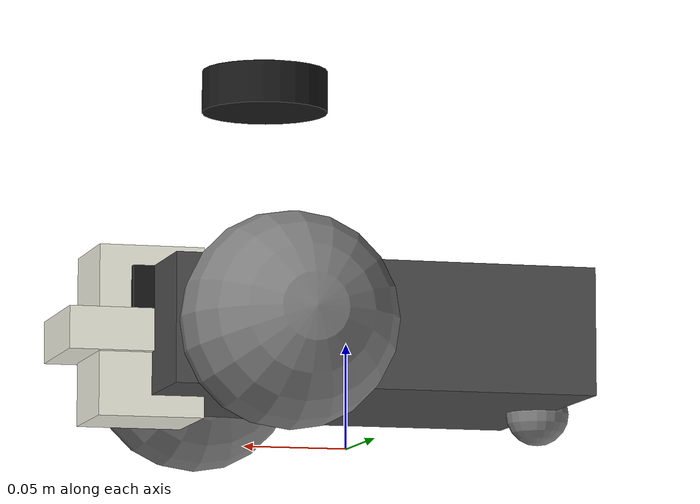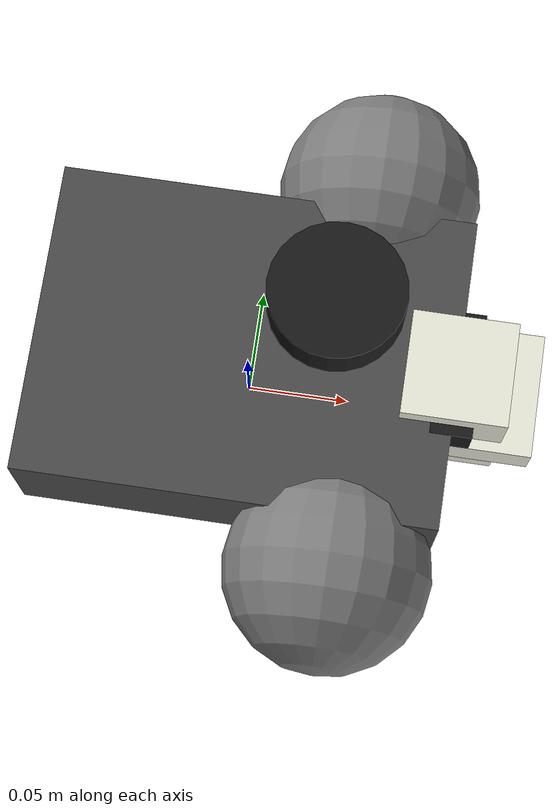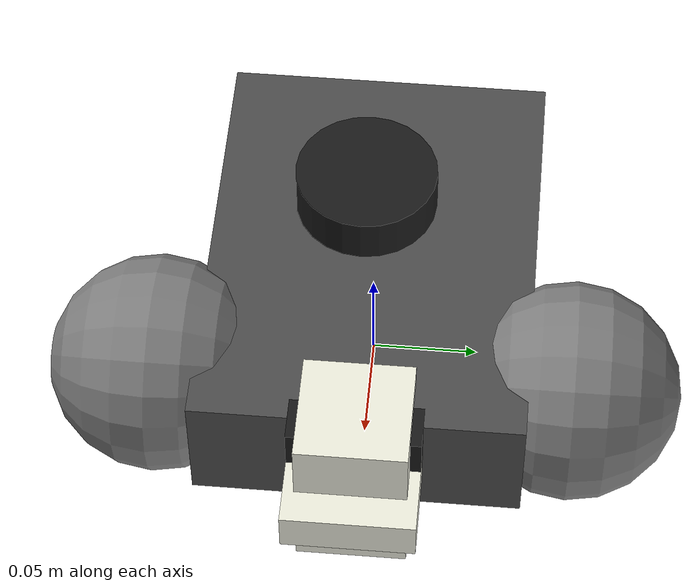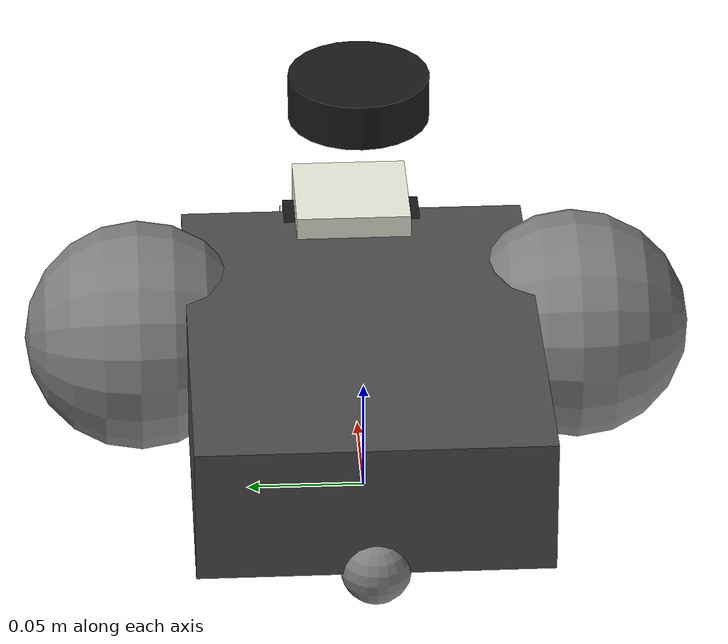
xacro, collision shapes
<?xml version="1.0"?>
<robot name="puzzlebot" xmlns:xacro="http://ros.org/wiki/xacro">

  <!-- Arguments -->
  <xacro:arg name="is_ignition" default="true"/>
  <xacro:arg name="is_sim" default="true"/>

  <!-- LiDAR is mounted rear-facing on the real robot (cable toward back).
       Rotate 180° in real mode so the scan aligns with +X forward. -->
  <xacro:property name="lidar_yaw" value="${0.0 if '$(arg is_sim)' == 'true' else 3.141592653589793}"/>

  <!-- Include Gazebo plugins -->
  <xacro:include filename="$(find description)/urdf/puzzlebot_gazebo.xacro" />

  <!-- Include ros2_control -->
  <xacro:include filename="$(find description)/urdf/puzzlebot_ros2_control.xacro" />

  <!-- ==================== PROPERTIES ==================== -->
  <xacro:property name="wheel_radius"    value="0.05"/>
  <xacro:property name="wheel_separation" value="0.19"/>
  <xacro:property name="base_mass"  value="1.0"/>
  <xacro:property name="wheel_mass" value="0.1"/>
  <xacro:property name="caster_mass" value="0.01"/>

  <!-- mm → m for STL meshes -->
  <xacro:property name="s" value="0.001"/>

  <!-- Inertia macros -->
  <xacro:macro name="cylinder_inertia" params="m r h">
    <inertial>
      <mass value="${m}"/>
      <inertia ixx="${m*(3*r*r+h*h)/12}" ixy="0.0" ixz="0.0"
               iyy="${m*(3*r*r+h*h)/12}" iyz="0.0"
               izz="${m*r*r/2}"/>
    </inertial>
  </xacro:macro>

  <xacro:macro name="box_inertia" params="m x y z">
    <inertial>
      <mass value="${m}"/>
      <inertia ixx="${m*(y*y+z*z)/12}" ixy="0.0" ixz="0.0"
               iyy="${m*(x*x+z*z)/12}" iyz="0.0"
               izz="${m*(x*x+y*y)/12}"/>
    </inertial>
  </xacro:macro>

  <xacro:macro name="sphere_inertia" params="m r">
    <inertial>
      <mass value="${m}"/>
      <inertia ixx="${2*m*r*r/5}" ixy="0.0" ixz="0.0"
               iyy="${2*m*r*r/5}" iyz="0.0"
               izz="${2*m*r*r/5}"/>
    </inertial>
  </xacro:macro>

  <!-- ==================== ROBOT LINKS ==================== -->

  <link name="base_footprint"/>

  <link name="base_link">
    <xacro:box_inertia m="${base_mass}" x="0.2" y="0.15" z="0.06"/>
    <visual>
      <geometry>
        <mesh filename="package://description/meshes/Puzzlebot_Jetson_Lidar_Edition_Base.stl"/>
      </geometry>
      <material name="dark_grey">
        <color rgba="0.3 0.3 0.3 1.0"/>
      </material>
    </visual>
    <collision>
      <geometry>
        <box size="0.2 0.15 0.06"/>
      </geometry>
    </collision>
  </link>

  <link name="wheel_right_link">
    <xacro:cylinder_inertia m="${wheel_mass}" r="${wheel_radius}" h="0.02"/>
    <visual>
      <origin xyz="0 0 0" rpy="-1.5708 0 0"/>
      <geometry>
        <mesh filename="package://description/meshes/Puzzlebot_Wheel.stl"/>
      </geometry>
      <material name="grey">
        <color rgba="0.5 0.5 0.5 1.0"/>
      </material>
    </visual>
    <collision>
      <origin xyz="0 0 0" rpy="1.5708 0 0"/>
      <geometry>
        <sphere radius="${wheel_radius}"/>
      </geometry>
    </collision>
  </link>

  <link name="wheel_left_link">
    <xacro:cylinder_inertia m="${wheel_mass}" r="${wheel_radius}" h="0.02"/>
    <visual>
      <origin xyz="0 0 0" rpy="1.5708 0 0"/>
      <geometry>
        <mesh filename="package://description/meshes/Puzzlebot_Wheel.stl"/>
      </geometry>
      <material name="grey">
        <color rgba="0.5 0.5 0.5 1.0"/>
      </material>
    </visual>
    <collision>
      <origin xyz="0 0 0" rpy="1.5708 0 0"/>
      <geometry>
        <sphere radius="${wheel_radius}"/>
      </geometry>
    </collision>
  </link>

  <link name="caster_link">
    <xacro:sphere_inertia m="${caster_mass}" r="0.015"/>
    <visual>
      <origin xyz="0 0 -0.015" rpy="0 0 0"/>
      <geometry>
        <mesh filename="package://description/meshes/Puzzlebot_Caster_Wheel.stl"/>
      </geometry>
      <material name="grey">
        <color rgba="0.5 0.5 0.5 1.0"/>
      </material>
    </visual>
    <collision>
      <geometry>
        <sphere radius="0.015"/>
      </geometry>
    </collision>
  </link>

  <link name="lidar_link">
    <inertial>
      <mass value="0.05"/>
      <inertia ixx="1e-6" ixy="0" ixz="0" iyy="1e-6" iyz="0" izz="1e-6"/>
    </inertial>
    <visual>
      <geometry>
        <cylinder radius="0.03" length="0.02"/>
      </geometry>
      <material name="black">
        <color rgba="0.1 0.1 0.1 1.0"/>
      </material>
    </visual>
    <collision>
      <geometry>
        <cylinder radius="0.03" length="0.02"/>
      </geometry>
    </collision>
  </link>

  <!-- Front-facing camera fixed to the robot base -->
  <link name="camera_link">
    <inertial>
      <mass value="0.02"/>
      <inertia ixx="1e-6" ixy="0" ixz="0" iyy="1e-6" iyz="0" izz="1e-6"/>
    </inertial>
    <visual>
      <geometry>
        <box size="0.02 0.06 0.02"/>
      </geometry>
      <material name="black">
        <color rgba="0.1 0.1 0.1 1.0"/>
      </material>
    </visual>
    <collision>
      <geometry>
        <box size="0.02 0.06 0.02"/>
      </geometry>
    </collision>
  </link>

  <link name="imu_link">
    <inertial>
      <mass value="0.01"/>
      <inertia ixx="1e-7" ixy="0" ixz="0" iyy="1e-7" iyz="0" izz="1e-7"/>
    </inertial>
  </link>

  <!-- ==================== MINI LIFTER LINKS ==================== -->

  <!-- Mast base: fixed to the front of the robot -->
  <link name="lifter_base_link">
    <visual>
      <origin xyz="0 0 0" rpy="0 0 0"/>
      <geometry>
        <mesh filename="package://description/meshes/mini_lifter/lifter_base_link.STL"
              scale="${s} ${s} ${s}"/>
      </geometry>
      <material name="off_white">
        <color rgba="0.93 0.93 0.87 1.0"/>
      </material>
    </visual>
    <collision>
      <origin xyz="0 0 0" rpy="0 0 0"/>
      <geometry>
        <box size="0.05 0.05 0.08"/>
      </geometry>
    </collision>
    <inertial>
      <origin xyz="0 0 0" rpy="0 0 0"/>
      <mass value="0.05"/>
      <inertia ixx="0.00005" ixy="0" ixz="0"
               iyy="0.00005" iyz="0" izz="0.00002"/>
    </inertial>
  </link>

  <!-- Lower arm: first prismatic stage that rises from the base -->
  <link name="lower_arm_link">
    <visual>
      <origin xyz="0 0 0" rpy="0 0 0"/>
      <geometry>
        <mesh filename="package://description/meshes/mini_lifter/lower_arm_Link.STL"
              scale="${s} ${s} ${s}"/>
      </geometry>
      <material name="light_grey">
        <color rgba="0.80 0.80 0.75 1.0"/>
      </material>
    </visual>
    <collision>
      <origin xyz="0 0 0" rpy="0 0 0"/>
      <geometry>
        <box size="0.04 0.04 0.06"/>
      </geometry>
    </collision>
    <inertial>
      <origin xyz="0 0 0" rpy="0 0 0"/>
      <mass value="0.03"/>
      <inertia ixx="0.00002" ixy="0" ixz="0"
               iyy="0.00002" iyz="0" izz="0.00001"/>
    </inertial>
  </link>

  <!-- Upper arm: second prismatic stage that rises from the lower arm -->
  <link name="upper_arm_link">
    <visual>
      <origin xyz="0 0 0" rpy="0 0 0"/>
      <geometry>
        <mesh filename="package://description/meshes/mini_lifter/upper_arm_Link.STL"
              scale="${s} ${s} ${s}"/>
      </geometry>
      <material name="light_grey">
        <color rgba="0.80 0.80 0.75 1.0"/>
      </material>
    </visual>
    <collision>
      <origin xyz="0 0 0" rpy="0 0 0"/>
      <geometry>
        <box size="0.04 0.04 0.05"/>
      </geometry>
    </collision>
    <inertial>
      <origin xyz="0 0 0" rpy="0 0 0"/>
      <mass value="0.02"/>
      <inertia ixx="0.00001" ixy="0" ixz="0"
               iyy="0.00001" iyz="0" izz="0.000008"/>
    </inertial>
  </link>

  <!-- Carriage: fork/platform that carries the pallet, fixed to upper arm top -->
  <link name="carriage_link">
    <visual>
      <origin xyz="0 0 0" rpy="0 0 0"/>
      <geometry>
        <mesh filename="package://description/meshes/mini_lifter/carriage_Link.STL"
              scale="${s} ${s} ${s}"/>
      </geometry>
      <material name="off_white">
        <color rgba="0.93 0.93 0.87 1.0"/>
      </material>
    </visual>
    <collision>
      <origin xyz="0 0 0" rpy="0 0 0"/>
      <geometry>
        <box size="0.08 0.06 0.02"/>
      </geometry>
    </collision>
    <inertial>
      <origin xyz="0 0 0" rpy="0 0 0"/>
      <mass value="0.02"/>
      <inertia ixx="0.00001" ixy="0" ixz="0"
               iyy="0.00001" iyz="0" izz="0.00001"/>
    </inertial>
  </link>

  <!-- ==================== ROBOT JOINTS ==================== -->

  <joint name="base_joint" type="fixed">
    <parent link="base_footprint"/>
    <child  link="base_link"/>
    <origin xyz="0.0 0.0 0.05" rpy="0.0 0.0 0.0"/>
  </joint>

  <joint name="wheel_right_joint" type="continuous">
    <parent link="base_link"/>
    <child  link="wheel_right_link"/>
    <origin xyz="0.052 -0.095 -0.0025" rpy="0.0 0.0 0.0"/>
    <axis xyz="0 1 0"/>
  </joint>

  <joint name="wheel_left_joint" type="continuous">
    <parent link="base_link"/>
    <child  link="wheel_left_link"/>
    <origin xyz="0.052 0.095 -0.0025" rpy="0.0 0.0 0.0"/>
    <axis xyz="0 1 0"/>
  </joint>

  <joint name="caster_joint" type="fixed">
    <parent link="base_link"/>
    <child  link="caster_link"/>
    <origin xyz="-0.095 0 -0.0307" rpy="0 0 0"/>
  </joint>

  <joint name="lidar_joint" type="fixed">
    <parent link="base_link"/>
    <child  link="lidar_link"/>
    <origin xyz="0.04 0.0 0.12" rpy="0.0 0.0 ${lidar_yaw}"/>
  </joint>

  <!-- Front-facing camera fixed to base, used for pallet alignment and Aruco -->
  <joint name="camera_joint" type="fixed">
    <parent link="base_link"/>
    <child  link="camera_link"/>
    <origin xyz="0.1 0.0 0.02" rpy="0.0 0.0 0.0"/>
  </joint>

  <joint name="imu_joint" type="fixed">
    <parent link="base_link"/>
    <child  link="imu_link"/>
    <origin xyz="0.0 0.0 0.04" rpy="0.0 0.0 0.0"/>
  </joint>

  <!-- ==================== MINI LIFTER JOINTS ==================== -->

  <!-- Mast base attached to robot front face, centred vertically on base_link -->
  <joint name="lifter_joint" type="fixed">
    <parent link="base_link"/>
    <child  link="lifter_base_link"/>
    <origin xyz="0.10 0.0 0.0" rpy="0 0 0"/>
  </joint>

  <!-- Lower arm slides upward inside the mast base -->
  <joint name="lower_arm_joint" type="prismatic">
    <parent link="lifter_base_link"/>
    <child  link="lower_arm_link"/>
    <origin xyz="0 0 0" rpy="0 0 0"/>
    <axis xyz="0 0 1"/>
    <limit lower="0.0" upper="0.08" effort="100.0" velocity="0.10"/>
    <dynamics damping="10.0" friction="2.0"/>
  </joint>

  <!-- Upper arm slides upward from the lower arm (second telescoping stage) -->
  <joint name="upper_arm_joint" type="prismatic">
    <parent link="lower_arm_link"/>
    <child  link="upper_arm_link"/>
    <origin xyz="0 0 0" rpy="0 0 0"/>
    <axis xyz="0 0 1"/>
    <limit lower="0.0" upper="0.06" effort="50.0" velocity="0.10"/>
    <dynamics damping="10.0" friction="2.0"/>
  </joint>

  <!-- Carriage fixed to the top of the upper arm -->
  <joint name="carriage_joint" type="fixed">
    <parent link="upper_arm_link"/>
    <child  link="carriage_link"/>
    <origin xyz="0 0 0" rpy="0 0 0"/>
  </joint>

  <!-- ==================== MATERIALS ==================== -->
  <material name="dark_grey">
    <color rgba="0.3 0.3 0.3 1.0"/>
  </material>
  <material name="grey">
    <color rgba="0.5 0.5 0.5 1.0"/>
  </material>
  <material name="black">
    <color rgba="0.1 0.1 0.1 1.0"/>
  </material>
  <material name="off_white">
    <color rgba="0.93 0.93 0.87 1.0"/>
  </material>
  <material name="light_grey">
    <color rgba="0.80 0.80 0.75 1.0"/>
  </material>

</robot>
